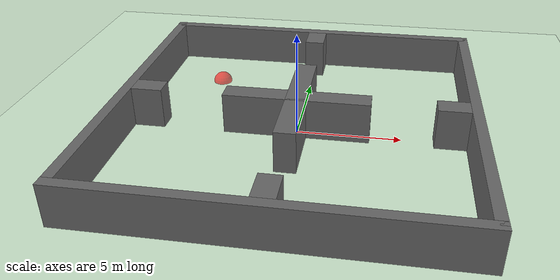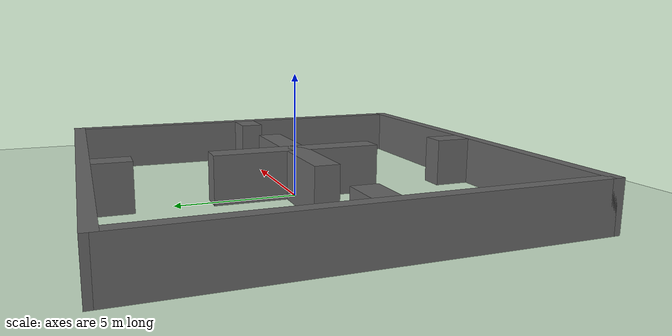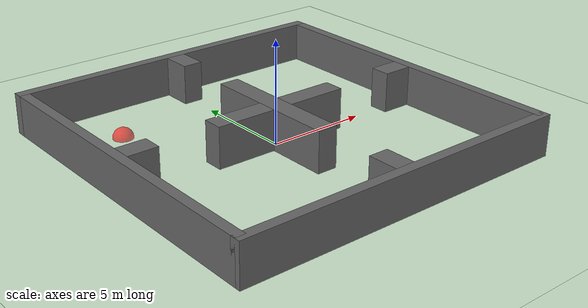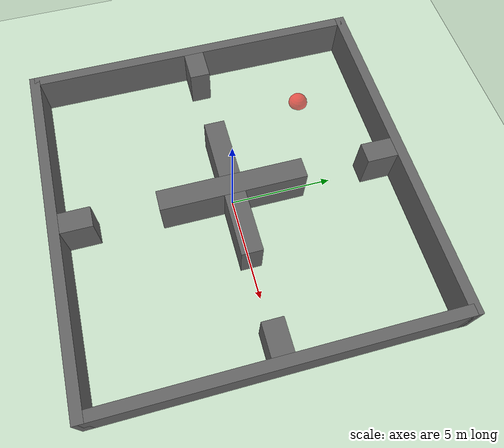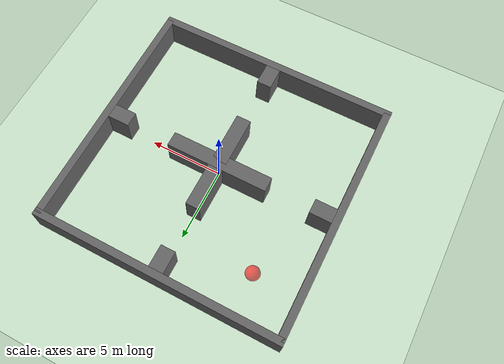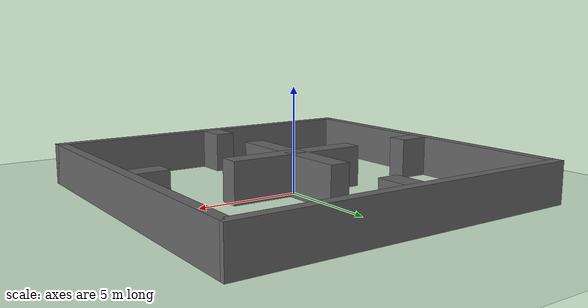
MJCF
<mujoco>
  <compiler inertiafromgeom="true" angle="degree" coordinate="local" />
    <option timestep="0.02" integrator="RK4" />
    <default>
        <joint limited="false" armature="0" damping="0" />
        <geom condim="3" conaffinity="0" margin="0" friction="1 0.5 0.5" rgba="0.8 0.6 0.4 1" density="10" />
    </default>
    <asset>
        <texture type="skybox" builtin="gradient" width="100" height="100" rgb1="1 1 1" rgb2="0 0 0" />
        <texture name="texgeom" type="cube" builtin="flat" mark="cross" width="127" height="1278" rgb1="0.8 0.6 0.4" rgb2="0.8 0.6 0.4" markrgb="1 1 1" random="0.01" />
        <texture name="texplane" type="2d" builtin="checker" rgb1="0 0 0" rgb2="0.8 0.8 0.8" width="100" height="100" />
        <material name='MatPlane' texture="texplane" shininess="1" texrepeat="30 30" specular="1"  reflectance="0.5" />
        <material name='geom' texture="texgeom" texuniform="true" />
    </asset>
  <worldbody>
    <light cutoff="100" diffuse="1 1 1" dir="-0 0 -1.3" directional="true" exponent="1" pos="0 0 1.3" specular=".1 .1 .1"/>
    <geom conaffinity="1" condim="3" material="MatPlane" name="floor" pos="0 0 0" rgba="0.8 0.9 0.8 1" size="40 40 40" type="plane"/>
    <body name="torso" pos="0 0 0">
        <geom name="pointbody" type="sphere" size="0.5" pos="0 0 0.5" />
        <geom name="pointarrow" type="box" size="0.5 0.1 0.1" pos="0.6 0 0.5" />
        <joint name='ballx' type='slide' axis='1 0 0' pos='0 0 0' />
        <joint name='bally' type='slide' axis='0 1 0' pos='0 0 0' />
        <joint name='rot' type='hinge' axis='0 0 1' pos='0 0 0' limited="false" />
    </body>

    <!-- Create Barriers -->
    <body name="east_wall" pos="8.25 0 1">
      <geom type="box" size="0.25 8.25 1" contype="1" conaffinity="1" rgba="0.4 0.4 0.4 1" />
    </body>
    <body name="north_wall" pos="0 8.25 1">
      <geom type="box" size="8.5 0.25 1" contype="1" conaffinity="1" rgba="0.4 0.4 0.4 1" />
    </body>
    <body name="west_wall" pos="-8.25 0 1">
      <geom type="box" size="0.25 8.25 1" contype="1" conaffinity="1" rgba="0.4 0.4 0.4 1" />
    </body>
    <body name="south_wall" pos="0 -8.25 1">
      <geom type="box" size="8.5 0.25 1" contype="1" conaffinity="1" rgba="0.4 0.4 0.4 1" />
    </body>

    <body name="center_vertical" pos="0 0 1">
      <geom type="box" size="0.5 3.5 1" contype="1" conaffinity="1" rgba="0.4 0.4 0.4 1" />
    </body>
    <body name="center_horizontal" pos="0 0 1">
      <geom type="box" size="3.5 0.5 1" contype="1" conaffinity="1" rgba="0.4 0.4 0.4 1" />
    </body>
    <body name="east_stick_out" pos="7.25 0 1">
      <geom type="box" size="0.75 0.5 1" contype="1" conaffinity="1" rgba="0.4 0.4 0.4 1" />
    </body>
    <body name="north_stick_out" pos="0 7.25 1">
      <geom type="box" size="0.5 0.75 1" contype="1" conaffinity="1" rgba="0.4 0.4 0.4 1" />
    </body>
    <body name="west_stick_out" pos="-7.25 0 1">
      <geom type="box" size="0.75 0.5 1" contype="1" conaffinity="1" rgba="0.4 0.4 0.4 1" />
    </body>
    <body name="south_stick_out" pos="0 -7.25 1">
      <geom type="box" size="0.5 0.75 1" contype="1" conaffinity="1" rgba="0.4 0.4 0.4 1" />
    </body>

    <!-- Goal / target position -->
    <geom name="target" type="sphere" size="0.5" pos="-5 5 0" rgba="1. 0. 0. 0.6" />
  </worldbody>

  <actuator>
    <!-- Those are just dummy actuators for providing ranges -->
    <motor joint='ballx' ctrlrange="-1.0 1.0" ctrllimited="true" />
    <motor joint='rot' ctrlrange="-0.2 0.2" ctrllimited="true" />
  </actuator>
</mujoco>
